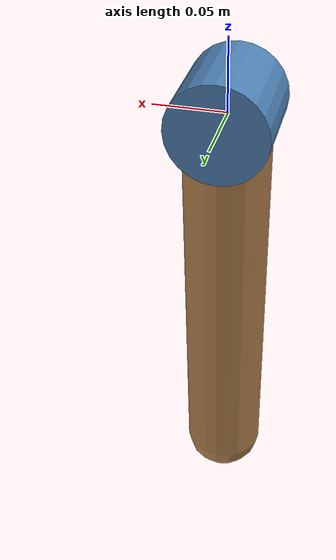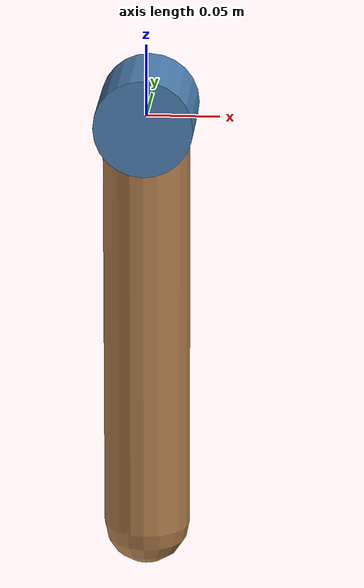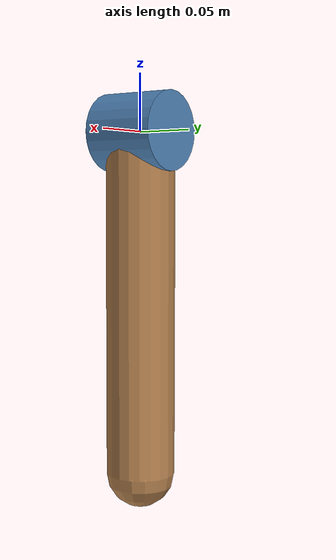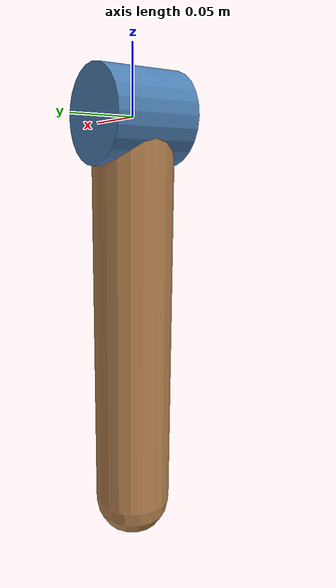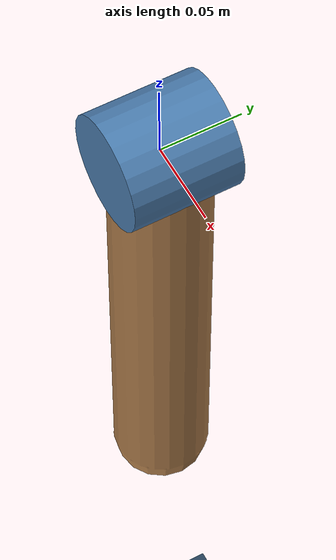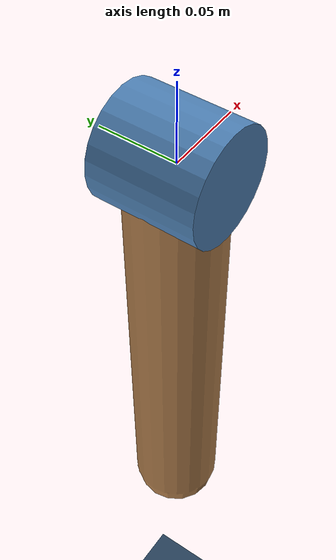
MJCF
<mujoco model="finger">

	<visual>
		<headlight ambient=".4 .4 .4" diffuse=".8 .8 .8" specular="0.1 0.1 0.1"/>
		<map znear=".01"/>
		<quality shadowsize="2048"/>
	</visual>

	<asset>
		<texture name="skybox" type="skybox" builtin="gradient" rgb1=".4 .6 .8" rgb2="0 0 0"
				 width="800" height="800" mark="random" markrgb="1 1 1"/>
	</asset>

	<asset>
		<texture name="grid" type="2d" builtin="checker" rgb1=".1 .2 .3" rgb2=".2 .3 .4" width="300" height="300" mark="edge" markrgb=".2 .3 .4"/>
		<material name="grid" texture="grid" texrepeat="1 1" texuniform="true" reflectance=".2"/>
		<material name="self" rgba=".7 .5 .3 1"/>
		<material name="self_default" rgba=".7 .5 .3 1"/>
		<material name="self_highlight" rgba="0 .5 .3 1"/>
		<material name="effector" rgba=".7 .4 .2 1"/>
		<material name="effector_default" rgba=".7 .4 .2 1"/>
		<material name="effector_highlight" rgba="0 .5 .3 1"/>
		<material name="decoration" rgba=".3 .5 .7 1"/>
		<material name="eye" rgba="0 .2 1 1"/>
		<material name="target" rgba=".6 .3 .3 1"/>
		<material name="target_default" rgba=".6 .3 .3 1"/>
		<material name="target_highlight" rgba=".6 .3 .3 .4"/>
	</asset>

	<option timestep="0.01" cone="elliptic" iterations="20">
		<flag gravity="enable"/>
	</option>

	<default>
		<geom solimp="0 0.9 0.01" solref=".02 1"/>
		<joint type="hinge" axis="0 -1 0"/>
		<motor ctrllimited="false" ctrlrange="-1 1"/>
		<default class="finger">
			<site type="ellipsoid" size=".025 .03 .025" rgba=".5 .5 .5 .3" group="3"/>
		</default>
	</default>

	<worldbody>
		<light name="light" directional="true" diffuse=".6 .6 .6" pos="0 0 2" specular=".3 .3 .3"/>
		<geom name="ground" type="plane" pos="0 0 -0.6" size=".6 .2 10" material="grid"/>
		<camera name="cam0" pos="0 -1 .8" xyaxes="1 0 0 0 1 2"/>
		<camera name="cam1" pos="0 -1 .4" xyaxes="1 0 0 0 0 1" />

		<body name="proximal" pos="0 0 0.0" childclass="finger">
			<geom name="proximal_decoration" type="cylinder" fromto="0 -.033 0 0 .033 0" size=".034" material="decoration"/>
			<joint name="proximal" range="-130 -60" damping="0.015" limited="false"/>
			<geom name="proximal" type="capsule" material="self" size=".03" fromto="0 0 0 0 0 -.3"/>
		</body>
	</worldbody>

	<actuator>
		<motor name="proximal" joint="proximal" gear="1"/>
	</actuator>

	<!-- All finger observations are functions of sensors. This is useful for finite-differencing. -->
	<sensor>
		<jointpos name="proximal" joint="proximal"/>
		<jointvel name="proximal_velocity" joint="proximal"/>
	</sensor>

</mujoco>
